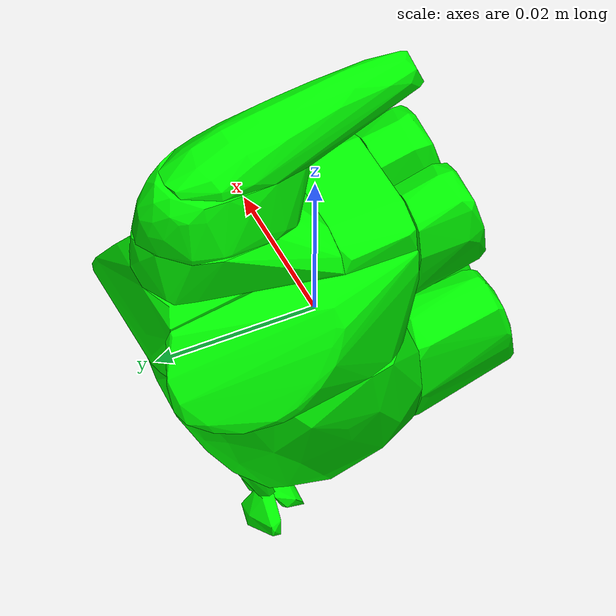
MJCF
<mujoco model="obj0">
  <asset>
    <mesh file="meshes/obj0/obj0_0.stl" name="obj0_0"/>
    <mesh file="meshes/obj0/obj0_1.stl" name="obj0_1"/>
    <mesh file="meshes/obj0/obj0_2.stl" name="obj0_2"/>
    <mesh file="meshes/obj0/obj0_3.stl" name="obj0_3"/>
    <mesh file="meshes/obj0/obj0_4.stl" name="obj0_4"/>
    <mesh file="meshes/obj0/obj0_5.stl" name="obj0_5"/>
    <mesh file="meshes/obj0/obj0_6.stl" name="obj0_6"/>
    <mesh file="meshes/obj0/obj0_7.stl" name="obj0_7"/>
    <mesh file="meshes/obj0/obj0_8.stl" name="obj0_8"/>
    <mesh file="meshes/obj0/obj0_9.stl" name="obj0_9"/>
    <mesh file="meshes/obj0/obj0_10.stl" name="obj0_10"/>
    <mesh file="meshes/obj0/obj0_11.stl" name="obj0_11"/>
    <mesh file="meshes/obj0/obj0_12.stl" name="obj0_12"/>
    <mesh file="meshes/obj0/obj0_13.stl" name="obj0_13"/>
    <mesh file="meshes/obj0/obj0_14.stl" name="obj0_14"/>
  </asset>
  <worldbody>
    <body>
      <body name="collision">
        <geom condim="4" density="100" friction="0.95 0.3 0.1" group="1" mesh="obj0_0" pos="0 0 0" rgba="0 1 0 1" solimp="0.998 0.998 0.001" solref="0.001 1" type="mesh"/>
        <geom condim="4" density="100" friction="0.95 0.3 0.1" group="1" mesh="obj0_1" pos="0 0 0" rgba="0 1 0 1" solimp="0.998 0.998 0.001" solref="0.001 1" type="mesh"/>
        <geom condim="4" density="100" friction="0.95 0.3 0.1" group="1" mesh="obj0_2" pos="0 0 0" rgba="0 1 0 1" solimp="0.998 0.998 0.001" solref="0.001 1" type="mesh"/>
        <geom condim="4" density="100" friction="0.95 0.3 0.1" group="1" mesh="obj0_3" pos="0 0 0" rgba="0 1 0 1" solimp="0.998 0.998 0.001" solref="0.001 1" type="mesh"/>
        <geom condim="4" density="100" friction="0.95 0.3 0.1" group="1" mesh="obj0_4" pos="0 0 0" rgba="0 1 0 1" solimp="0.998 0.998 0.001" solref="0.001 1" type="mesh"/>
        <geom condim="4" density="100" friction="0.95 0.3 0.1" group="1" mesh="obj0_5" pos="0 0 0" rgba="0 1 0 1" solimp="0.998 0.998 0.001" solref="0.001 1" type="mesh"/>
        <geom condim="4" density="100" friction="0.95 0.3 0.1" group="1" mesh="obj0_6" pos="0 0 0" rgba="0 1 0 1" solimp="0.998 0.998 0.001" solref="0.001 1" type="mesh"/>
        <geom condim="4" density="100" friction="0.95 0.3 0.1" group="1" mesh="obj0_7" pos="0 0 0" rgba="0 1 0 1" solimp="0.998 0.998 0.001" solref="0.001 1" type="mesh"/>
        <geom condim="4" density="100" friction="0.95 0.3 0.1" group="1" mesh="obj0_8" pos="0 0 0" rgba="0 1 0 1" solimp="0.998 0.998 0.001" solref="0.001 1" type="mesh"/>
        <geom condim="4" density="100" friction="0.95 0.3 0.1" group="1" mesh="obj0_9" pos="0 0 0" rgba="0 1 0 1" solimp="0.998 0.998 0.001" solref="0.001 1" type="mesh"/>
        <geom condim="4" density="100" friction="0.95 0.3 0.1" group="1" mesh="obj0_10" pos="0 0 0" rgba="0 1 0 1" solimp="0.998 0.998 0.001" solref="0.001 1" type="mesh"/>
        <geom condim="4" density="100" friction="0.95 0.3 0.1" group="1" mesh="obj0_11" pos="0 0 0" rgba="0 1 0 1" solimp="0.998 0.998 0.001" solref="0.001 1" type="mesh"/>
        <geom condim="4" density="100" friction="0.95 0.3 0.1" group="1" mesh="obj0_12" pos="0 0 0" rgba="0 1 0 1" solimp="0.998 0.998 0.001" solref="0.001 1" type="mesh"/>
        <geom condim="4" density="100" friction="0.95 0.3 0.1" group="1" mesh="obj0_13" pos="0 0 0" rgba="0 1 0 1" solimp="0.998 0.998 0.001" solref="0.001 1" type="mesh"/>
        <geom condim="4" density="100" friction="0.95 0.3 0.1" group="1" mesh="obj0_14" pos="0 0 0" rgba="0 1 0 1" solimp="0.998 0.998 0.001" solref="0.001 1" type="mesh"/>
      </body>
      <body name="visual">
        <geom conaffinity="0" contype="0" group="0" mass="0.0001" mesh="obj0_0" pos="0 0 0" rgba="0 1 0 1" type="mesh"/>
        <geom conaffinity="0" contype="0" group="0" mass="0.0001" mesh="obj0_1" pos="0 0 0" rgba="0 1 0 1" type="mesh"/>
        <geom conaffinity="0" contype="0" group="0" mass="0.0001" mesh="obj0_2" pos="0 0 0" rgba="0 1 0 1" type="mesh"/>
        <geom conaffinity="0" contype="0" group="0" mass="0.0001" mesh="obj0_3" pos="0 0 0" rgba="0 1 0 1" type="mesh"/>
        <geom conaffinity="0" contype="0" group="0" mass="0.0001" mesh="obj0_4" pos="0 0 0" rgba="0 1 0 1" type="mesh"/>
        <geom conaffinity="0" contype="0" group="0" mass="0.0001" mesh="obj0_5" pos="0 0 0" rgba="0 1 0 1" type="mesh"/>
        <geom conaffinity="0" contype="0" group="0" mass="0.0001" mesh="obj0_6" pos="0 0 0" rgba="0 1 0 1" type="mesh"/>
        <geom conaffinity="0" contype="0" group="0" mass="0.0001" mesh="obj0_7" pos="0 0 0" rgba="0 1 0 1" type="mesh"/>
        <geom conaffinity="0" contype="0" group="0" mass="0.0001" mesh="obj0_8" pos="0 0 0" rgba="0 1 0 1" type="mesh"/>
        <geom conaffinity="0" contype="0" group="0" mass="0.0001" mesh="obj0_9" pos="0 0 0" rgba="0 1 0 1" type="mesh"/>
        <geom conaffinity="0" contype="0" group="0" mass="0.0001" mesh="obj0_10" pos="0 0 0" rgba="0 1 0 1" type="mesh"/>
        <geom conaffinity="0" contype="0" group="0" mass="0.0001" mesh="obj0_11" pos="0 0 0" rgba="0 1 0 1" type="mesh"/>
        <geom conaffinity="0" contype="0" group="0" mass="0.0001" mesh="obj0_12" pos="0 0 0" rgba="0 1 0 1" type="mesh"/>
        <geom conaffinity="0" contype="0" group="0" mass="0.0001" mesh="obj0_13" pos="0 0 0" rgba="0 1 0 1" type="mesh"/>
        <geom conaffinity="0" contype="0" group="0" mass="0.0001" mesh="obj0_14" pos="0 0 0" rgba="0 1 0 1" type="mesh"/>
      </body>
      <site name="bottom_site" pos="0 0 -0.06" rgba="0 0 0 0" size="0.005"/>
      <site name="top_site" pos="0 0 0.04" rgba="0 0 0 0" size="0.005"/>
      <site name="horizontal_radius_site" pos="0.025 0.025 0" rgba="0 0 0 0" size="0.005"/>
    </body>
  </worldbody>
</mujoco>
